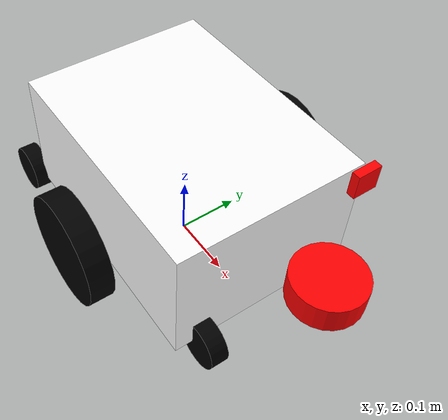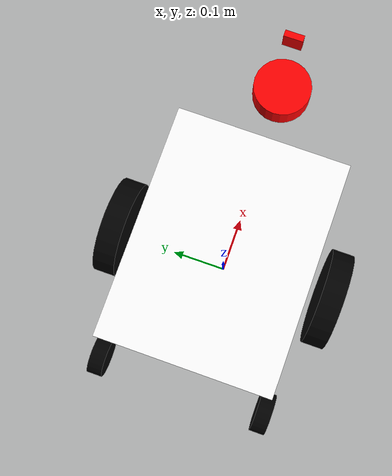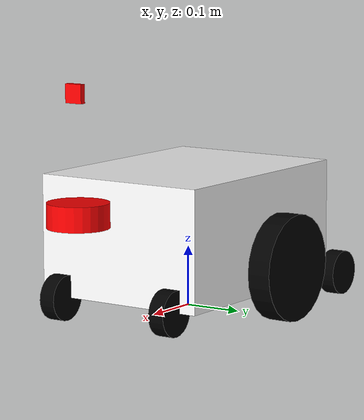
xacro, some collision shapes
<?xml version="1.0"?>

<robot xmlns:xacro="http://www.ros.org/wiki/xacro" name="emma_robot">

    <xacro:include filename="emma_core.xacro" />
    <xacro:include filename="gazebo_control.xacro" />
    <xacro:include filename="lidar.xacro" />
    <xacro:include filename="camera.xacro" />

</robot>

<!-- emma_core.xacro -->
<robot xmlns:xacro="http://www.ros.org/wiki/xacro" >

    <material name="blue">
        <color rgba="0 0 0.8 1"/>
    </material>
    <material name="black">
        <color rgba="0 0 0 1"/>
    </material>
    <material name="white">
        <color rgba="1 1 1 1"/>
    </material>
    <material name="red">
        <color rgba="1 0 0 1"/>
    </material>

    <!-- Base Link-->
    <link name="base_link">
    </link>

    <!-- BASE_FOOTPRINT LINK -->

    <joint name="base_footprint_joint" type="fixed">
        <parent link="base_link"/>
        <child link="base_footprint"/>
        <origin xyz="0 0 0" rpy="0 0 0"/>
    </joint>

    <link name="base_footprint">
    </link>

    <!-- Chassis Link or Main Body -->
    <link name="chassis">
    <visual>
        <origin rpy="1.5707963267949 0 1.5707963267949" xyz="0 0 0"/>

        <geometry>
         <mesh filename="file:///home/schaeffler/schaeffler/src/emma_visualization/meshes/AMR_Platform.STL"/>

        </geometry>
        <material name="white"/>

    </visual>

    <collision>
        <origin rpy="0 0 0" xyz="0 0 0.05"/>
        <geometry>
        <box size="0.4 0.3 0.2"/>
        </geometry>
    </collision>

    <inertial>
        <mass value="4.07"/>
        <inertia ixx="0.426" ixy="0.0" ixz="0.0" iyy="0.496" iyz="0.0" izz="0.91"/>
    </inertial>
    </link>
    <gazebo reference="chassis">
        <material>Gazebo/white</material>
    </gazebo>
    <!-- Chassis Joint-->
    <joint name="chassis_joint" type="fixed">

        <parent link="base_link"/>
        <child link="chassis"/>
        <origin xyz="0.0 0.0 0.085"/>

    </joint>

    <!-- Chassis Link or Main Body-->

    <link name="left_wheel">
        <visual>
            <origin xyz="0 0 0" rpy="1.5707963267949 0 0" />
            <geometry>
                <cylinder radius="0.088" length="0.03937"/>
            </geometry>
            <material name="black"/>
        </visual>

        <collision>
            <origin xyz="0 0 0" rpy="1.5707963267949 0 0"/>
            <geometry>
                <cylinder radius="0.088" length="0.03937"/>
            </geometry>
        </collision>

        <inertial>
            <mass value="0.17"/>
            <inertia ixx="0.000204" ixy="0.0" ixz="0.0" iyy="0.000306" iyz="0.0" izz="0.000204"/>
        </inertial>
    </link>
    <gazebo reference="left_wheel">
        <material>Gazebo/black</material>
    </gazebo>
    <joint name="left_wheel_joint" type="continuous">
            <parent link="chassis"/>
            <child link="left_wheel"/>
            <origin xyz="0 0.196425 0.000881" rpy="0 0 0"/>
            <axis xyz="0 1 0"/>
    </joint>

    <link name="right_wheel">
        <visual>
            <origin xyz="0 0 0" rpy="1.5707963267949 0 0" />
            <geometry>
                <cylinder radius="0.088" length="0.03937"/>
            </geometry>
            <material name="black"/>
        </visual>

        <collision>
            <origin xyz="0 0 0" rpy="1.5707963267949 0 0"/>
            <geometry>
                <cylinder radius="0.088" length="0.03937"/>
            </geometry>
        </collision>

        <inertial>
            <mass value="0.17"/>
            <inertia ixx="0.000204" ixy="0.0" ixz="0.0" iyy="0.000306" iyz="0.0" izz="0.000204"/>
        </inertial>
    </link>
    <gazebo reference="right_wheel">
        <material>Gazebo/black</material>
    </gazebo>
    <joint name="right_wheel_joint" type="continuous">
            <parent link="chassis"/>
            <child link="right_wheel"/>
            <origin xyz="0 -0.196425 0.000881" rpy="0 0 0"/>
            <axis xyz="0 1 0"/>
    </joint>

    <link name="right_front_small_wheel">
        <visual>
            <origin xyz="0 0 0" rpy="1.5707963267949 0 0"/>
            <geometry>
                <cylinder length="0.02775" radius="0.0375"/>
            </geometry>
            <material name="black"/>
        </visual>
        <collision>
            <origin xyz="0 0 0" rpy="1.5707963267949 0 0"/>
            <geometry>
                <cylinder length="0.02775" radius="0.0375"/>
            </geometry>
        </collision>
        <inertial>
            <mass value="0.17"/>
            <inertia ixx="0.000204" ixy="0.0" ixz="0.0" iyy="0.000306" iyz="0.0" izz="0.000204"/>
        </inertial>
    </link>
    <gazebo reference="right_front_small_wheel">
        <material>Gazebo/black</material>
    </gazebo>

    <joint name="right_front_small_wheel_joint" type="fixed">
        <axis rpy="0 0 0" xyz="0 1 0"/>
        <parent link="chassis"/>
        <child link="right_front_small_wheel"/>
        <origin xyz="0.209 -0.108 -0.049" rpy="0 0 0"/>
    </joint>

    <link name="left_front_small_wheel">
        <visual>
            <origin xyz="0 0 0" rpy="1.5707963267949 0 0"/>
            <geometry>
                <cylinder length="0.02775" radius="0.0375"/>
            </geometry>
            <material name="black"/>
        </visual>
        <collision>
            <origin xyz="0 0 0" rpy="1.5707963267949 0 0"/>
            <geometry>
                <cylinder length="0.02775" radius="0.0375"/>
            </geometry>
        </collision>
        <inertial>
            <mass value="0.17"/>
            <inertia ixx="0.000204" ixy="0.0" ixz="0.0" iyy="0.000306" iyz="0.0" izz="0.000204"/>
        </inertial>
    </link>
    <gazebo reference="left_front_small_wheel">
        <material>Gazebo/black</material>
    </gazebo>

    <joint name="left_front_small_wheel_joint" type="fixed">
        <axis rpy="0 0 0" xyz="0 1 0"/>
        <parent link="chassis"/>
        <child link="left_front_small_wheel"/>
        <origin  xyz="0.209 0.108 -0.049" rpy="0 0 0"/>
    </joint>

    <link name="left_back_small_wheel">
        <visual>
            <origin xyz="0 0 0" rpy="1.5707963267949 0 0" />
            <geometry>
                <cylinder length="0.02775" radius="0.0375"/>
            </geometry>
            <material name="black"/>
        </visual>
        <collision>
            <origin xyz="0 0 0" rpy="1.5707963267949 0 0" />
            <geometry>
                <cylinder length="0.02775" radius="0.0375"/>
            </geometry>
        </collision>
        <inertial>
            <mass value="0.17"/>
            <inertia ixx="0.000204" ixy="0.0" ixz="0.0" iyy="0.000306" iyz="0.0" izz="0.000204"/>
        </inertial>
    </link>
     <gazebo reference="left_back_small_wheel">
        <material>Gazebo/black</material>
    </gazebo>

    <joint name="left_back_small_wheel_joint" type="fixed">
        <axis rpy="0 0 0" xyz="0 1 0"/>
        <parent link="chassis"/>
        <child link="left_back_small_wheel"/>
        <origin xyz="-0.228 0.156 -0.049" rpy="0 0 0" />
    </joint>

    <link name="right_back_small_wheel">
        <visual>
            <origin xyz="0 0 0" rpy="1.5707963267949 0 0" />
            <geometry>
                <cylinder length="0.02775" radius="0.0375"/>
            </geometry>
            <material name="black"/>
        </visual>
        <collision>
            <origin xyz="0 0 0" rpy="1.5707963267949 0 0" />
            <geometry>
                <cylinder length="0.02775" radius="0.0375"/>
            </geometry>
        </collision>
        <inertial>
            <mass value="0.17"/>
            <inertia ixx="0.000204" ixy="0.0" ixz="0.0" iyy="0.000306" iyz="0.0" izz="0.000204"/>
        </inertial>
    </link>
    <gazebo reference="right_back_small_wheel">
        <material>Gazebo/black</material>
    </gazebo>
    <joint name="right_back_small_wheel_joint" type="fixed">
        <axis rpy="0 0 0" xyz="0 1 0"/>
        <parent link="chassis"/>
        <child link="right_back_small_wheel"/>
        <origin xyz="-0.228 -0.156 -0.049" rpy="0 0 0" />
    </joint>

</robot>

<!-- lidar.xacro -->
<robot xmlns:xacro="http://www.ros.org/wiki/xacro" >

    <joint name="laser_joint" type="fixed">
        <parent link="chassis"/>
        <child link="laser_frame"/>
        <origin xyz="0.3 0 0.11" rpy="0 0 0"/>
    </joint>

    <link name="laser_frame">
        <visual>
            <geometry>
                <cylinder radius="0.05" length="0.04"/>
            </geometry>
            <material name="red"/>
        </visual>
        <collision>
            <geometry>
                <cylinder radius="0.05" length="0.04"/>
            </geometry>
        </collision>
        <inertial>  <mass value="0.1"/>
            <inertia ixx="${0.5 * 0.1 * (0.05*0.05) + (1/12) * 0.1 * (0.04*0.04)}"
                     iyy="${0.5 * 0.1 * (0.05*0.05) + (1/12) * 0.1 * (0.04*0.04)}"
                     izz="${0.5 * 0.1 * (0.05*0.05)}"
                     ixy="0.0" ixz="0.0" iyz="0.0"/>
            <origin xyz="0 0 0" rpy="0 0 0"/>
        </inertial>
    </link>

    <gazebo reference="laser_frame">

        <sensor name="laser" type="ray">
            <pose> 0 0 0 0 0 0 </pose>
            <visualize>false</visualize>
            <update_rate>10</update_rate>
            <ray>
                <scan>
                    <horizontal>
                        <samples>360</samples>
                        <min_angle>-1.570796</min_angle>
                        <max_angle>1.570796</max_angle>
                    </horizontal>
                </scan>
                <range>
                    <min>0.3</min>
                    <max>12</max>
                </range>
            </ray>
            <plugin name="laser_controller" filename="libgazebo_ros_ray_sensor.so">
                <ros>
                    <argument>~/out:=scan</argument>
                </ros>
                <output_type>sensor_msgs/LaserScan</output_type>
                <frame_name>laser_frame</frame_name>
            </plugin>
        </sensor>
    </gazebo>

</robot>

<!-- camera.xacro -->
<robot xmlns:xacro="http://www.ros.org/wiki/xacro" >

    <joint name="camera_joint" type="fixed">
        <parent link="chassis"/>
        <child link="camera_link"/>
        <origin xyz="0.305 0 0.3" rpy="0 0 0"/>
    </joint>

    <link name="camera_link">
        <visual>
            <geometry>
                <box size="0.010 0.03 0.03"/>
            </geometry>
            <material name="red"/>
        </visual>
    </link>

    <joint name="camera_optical_joint" type="fixed">
        <parent link="camera_link"/>
        <child link="camera_link_optical"/>
        <origin xyz="0 0 0" rpy="${-pi/2} 0 ${-pi/2}"/>
    </joint>

    <link name="camera_link_optical"></link>

    <gazebo reference="camera_link">
        <material>Gazebo/Red</material>

        <sensor name="camera" type="camera">
            <pose> 0 0 0 0 0 0 </pose>
            <visualize>true</visualize>
            <update_rate>10</update_rate>
            <camera>
                <horizontal_fov>1.089</horizontal_fov>
                <image>
                    <format>R8G8B8</format>
                    <width>640</width>
                    <height>480</height>
                </image>
                <clip>
                    <near>0.05</near>
                    <far>8.0</far>
                </clip>
            </camera>
            <plugin name="camera_controller" filename="libgazebo_ros_camera.so">
                <frame_name>camera_link_optical</frame_name>
            </plugin>
        </sensor>
    </gazebo>

</robot>
